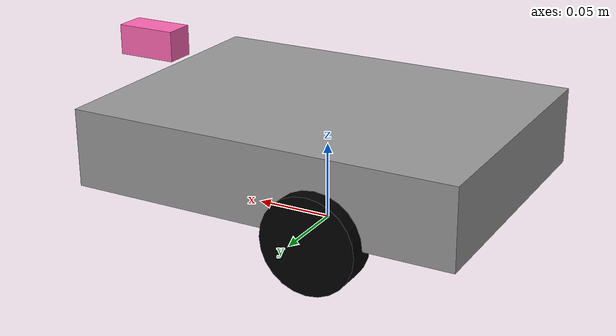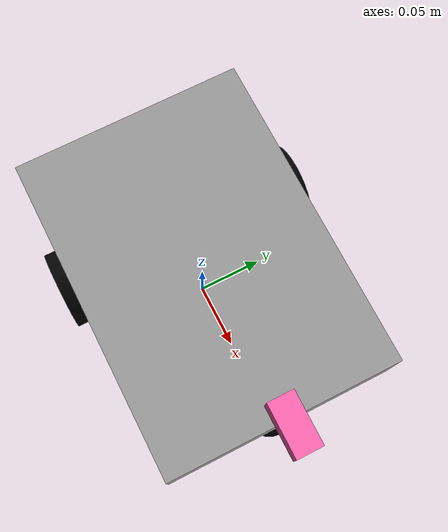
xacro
<?xml version="1.0"?>
<robot xmlns:xacro="http://www.ros.org/wiki/xacro" name="robot">

  <!-- ===== INCLUDE INERTIAL MACROS ===== -->
  <xacro:include filename="inertial_macros.xacro"/>

  <!-- ===== MATERIALS ===== -->
  <material name="black"><color rgba="0 0 0 1"/></material>
  <material name="blue"><color rgba="0 0 1 1"/></material>
  <material name="gray"><color rgba="0.6 0.6 0.6 1"/></material>
  <material name="pink"><color rgba="1 0.4 0.7 1"/></material>

  <!-- ================= BASE ================= -->
  <link name="base_link">
    <visual>
      <origin xyz="0 0 0.055"/>
      <geometry>
        <box size="0.25 0.18 0.05"/>
      </geometry>
      <material name="gray"/>
    </visual>

    <collision>
      <origin xyz="0 0 0.055"/>
      <geometry>
        <box size="0.25 0.18 0.05"/>
      </geometry>
    </collision>

    <xacro:inertial_box mass="3.0" x="0.25" y="0.18" z="0.05"/>
  </link>

  <!-- ================= LEFT WHEEL ================= -->
  <link name="left_wheel">
    <visual>
      <origin rpy="1.5708 0 0"/>
      <geometry>
        <cylinder radius="0.03" length="0.02"/>
      </geometry>
      <material name="black"/>
    </visual>

    <collision>
      <origin rpy="1.5708 0 0"/>
      <geometry>
        <cylinder radius="0.03" length="0.02"/>
      </geometry>
    </collision>

    <xacro:inertial_cylinder mass="0.3" r="0.03" h="0.02"/>
  </link>

  <joint name="left_wheel_joint" type="continuous">
    <parent link="base_link"/>
    <child link="left_wheel"/>
    <origin xyz="-0.04 0.09 0.03"/>
    <axis xyz="0 1 0"/>
  </joint>

  <!-- ================= RIGHT WHEEL ================= -->
  <link name="right_wheel">
    <visual>
      <origin rpy="1.5708 0 0"/>
      <geometry>
        <cylinder radius="0.03" length="0.02"/>
      </geometry>
      <material name="black"/>
    </visual>

    <collision>
      <origin rpy="1.5708 0 0"/>
      <geometry>
        <cylinder radius="0.03" length="0.02"/>
      </geometry>
    </collision>

    <xacro:inertial_cylinder mass="0.3" r="0.03" h="0.02"/>
  </link>

  <joint name="right_wheel_joint" type="continuous">
    <parent link="base_link"/>
    <child link="right_wheel"/>
    <origin xyz="-0.04 -0.09 0.03"/>
    <axis xyz="0 1 0"/>
  </joint>

  <!-- ================= CASTER ================= -->
  <link name="caster_wheel">
    <visual>
      <geometry><sphere radius="0.02"/></geometry>
      <material name="black"/>
    </visual>

    <collision>
      <geometry><sphere radius="0.02"/></geometry>
      <material name="black"/>
    </collision>

    <xacro:inertial_sphere mass="0.1" r="0.02"/>
  </link>

  <joint name="caster_joint" type="fixed">
    <parent link="base_link"/>
    <child link="caster_wheel"/>
    <origin xyz="0.11 0 0.02"/>
  </joint>

  <!-- ================= ULTRASONIC SENSORS ================= -->
  <link name="ultrasonic_front">
    <visual><geometry><box size="0.04 0.02 0.02"/></geometry><material name="pink" ></material></visual>
    <collision><geometry><box size="0.04 0.02 0.02"/></geometry><material name="pink" ></material></collision>
    <xacro:inertial_box mass="0.05" x="0.04" y="0.02" z="0.02"/>
  </link>

  <joint name="ultrasonic_front_joint" type="fixed">
    <parent link="base_link"/>
    <child link="ultrasonic_front"/>
    <origin xyz="0.13 0 0.10"/>
  </joint>

</robot>

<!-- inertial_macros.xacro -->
<robot xmlns:xacro="http://www.ros.org/wiki/xacro">

  <!-- ===== BOX INERTIAL ===== -->
  <xacro:macro name="inertial_box" params="mass x y z">
    <inertial>
      <origin xyz="0 0 0"/>
      <mass value="${mass}"/>
      <inertia
        ixx="${mass*(y*y+z*z)/12}"
        iyy="${mass*(x*x+z*z)/12}"
        izz="${mass*(x*x+y*y)/12}"
        ixy="0" ixz="0" iyz="0"/>
    </inertial>
  </xacro:macro>

  <!-- ===== CYLINDER INERTIAL ===== -->
  <xacro:macro name="inertial_cylinder" params="mass r h">
    <inertial>
      <origin xyz="0 0 0"/>
      <mass value="${mass}"/>
      <inertia
        ixx="${mass*(3*r*r+h*h)/12}"
        iyy="${mass*(3*r*r+h*h)/12}"
        izz="${mass*r*r/2}"
        ixy="0" ixz="0" iyz="0"/>
    </inertial>
  </xacro:macro>

  <!-- ===== SPHERE INERTIAL ===== -->
  <xacro:macro name="inertial_sphere" params="mass r">
    <inertial>
      <origin xyz="0 0 0"/>
      <mass value="${mass}"/>
      <inertia
        ixx="${2*mass*r*r/5}"
        iyy="${2*mass*r*r/5}"
        izz="${2*mass*r*r/5}"
        ixy="0" ixz="0" iyz="0"/>
    </inertial>
  </xacro:macro>

</robot>
